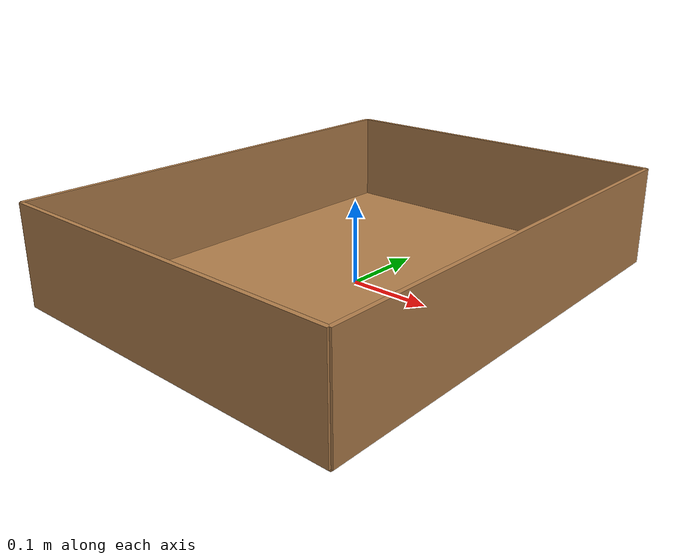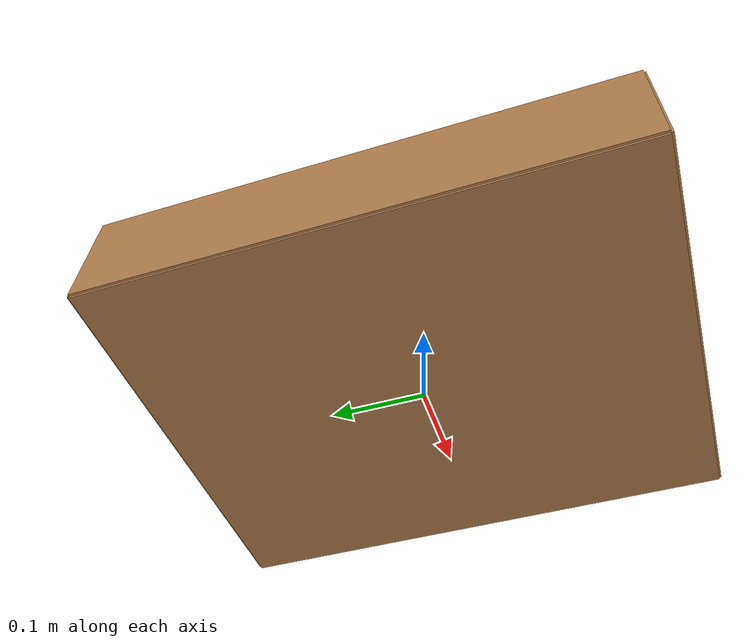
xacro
<?xml version="1.0"?>
<robot name="basket" xmlns:xacro="http://www.ros.org/wiki/xacro">

  <xacro:include filename="$(find world_model_data)/data/models/xacro/common.xacro"/>

  <xacro:macro name="basket" params="name length width depth
                                     color *origin">

    <link name="${name}-base">
      <!--link name="${name}-bottom"-->
      <visual>
        <origin rpy="0 0 0" xyz="0 0 0"/>
        <geometry>
          <box size="${length} ${width} 0.005"/>
        </geometry>
        <material name="basket_color"/>
      </visual>
      <collision>
        <origin rpy="0 0 0" xyz="0 0 0"/>
        <geometry>
          <box size="${length} ${width} 0.005"/>
        </geometry>
      </collision>
      <inertial>
        <origin rpy="0 0 0" xyz="0.000000 0.000000 0.000000"/>
        <mass value="1.0"/>
        <inertia ixx="1.0" ixy="0.01" ixz="0.01" iyy="1.0" iyz="0.01" izz="1.0"/>
      </inertial>

      <!--link name="${name}-left"-->
      <visual>
        <origin xyz="0 -${width/2.} ${depth/2.}" rpy="1.57 0 0"/>
        <geometry>
          <box size="${length} ${depth} 0.005"/>
        </geometry>
        <material name="basket_color"/>
      </visual>
      <collision>
        <origin xyz="0 -${width/2.} ${depth/2.}" rpy="1.57 0 0"/>
        <geometry>
          <box size="${length} ${depth} 0.005"/>
        </geometry>
      </collision>
      <inertial>
        <origin xyz="0 -${width/2.} ${depth/2.}" rpy="1.57 0 0"/>
        <mass value="0.1"/>
        <inertia ixx="1.0" ixy="0.01" ixz="0.01" iyy="1.0" iyz="0.01" izz="1.0"/>
      </inertial>

      <!--link name="${name}-right"-->
      <visual>
        <origin xyz="0 ${width/2.} ${depth/2.}" rpy="1.57 0 0"/>
        <geometry>
          <box size="${length} ${depth} 0.005"/>
        </geometry>
        <material name="basket_color"/>
      </visual>
      <collision>
        <origin xyz="0 ${width/2.} ${depth/2.}" rpy="1.57 0 0"/>
        <geometry>
          <box size="${length} ${depth} 0.005"/>
        </geometry>
      </collision>
      <inertial>
        <origin xyz="0 ${width/2.} ${depth/2.}" rpy="1.57 0 0"/>
        <mass value="0.1"/>
        <inertia ixx="1.0" ixy="0.01" ixz="0.01" iyy="1.0" iyz="0.01" izz="1.0"/>
      </inertial>

      <!--link name="${name}-up"-->
      <visual>
        <origin xyz="${length/2.} 0 ${depth/2.}" rpy="0 1.57 0"/>
        <geometry>
          <box size="${depth} ${width} 0.005"/>
        </geometry>
        <material name="basket_color"/>
      </visual>
      <collision>
        <origin xyz="${length/2.} 0 ${depth/2.}" rpy="0 1.57 0"/>
        <geometry>
          <box size="${depth} ${width} 0.005"/>
        </geometry>
      </collision>
      <inertial>
        <origin xyz="${length/2.} 0 ${depth/2.}" rpy="0 1.57 0"/>
        <mass value="0.1"/>
        <inertia ixx="1.0" ixy="0.01" ixz="0.01" iyy="1.0" iyz="0.01" izz="1.0"/>
      </inertial>

      <!--link name="${name}-down"-->
      <visual>
        <origin xyz="-${length/2.} 0 ${depth/2.}" rpy="0 1.57 0"/>
        <geometry>
          <box size="${depth} ${width} 0.005"/>
        </geometry>
        <material name="basket_color"/>
      </visual>
      <collision>
        <origin xyz="-${length/2.} 0 ${depth/2.}" rpy="0 1.57 0"/>
        <geometry>
          <box size="${depth} ${width} 0.005"/>
        </geometry>
      </collision>
      <inertial>
        <origin xyz="-${length/2.} 0 ${depth/2.}" rpy="0 1.57 0"/>
        <mass value="0.1"/>
        <inertia ixx="1.0" ixy="0.01" ixz="0.01" iyy="1.0" iyz="0.01" izz="1.0"/>
      </inertial>
    </link>

    <gazebo reference="${name}-base">
      <material>Gazebo/${color}</material>
      <kp>1000000.0</kp>
      <kd>1.0</kd>
      <mu1>1.0</mu1>
      <mu2>1.0</mu2>
      <minDepth>0.001</minDepth>
    </gazebo>

  </xacro:macro>

  <xacro:arg name="name" default="place-tray"/>
  <xacro:arg name="length" default="0.44"/>
  <xacro:arg name="width" default="0.56"/>
  <xacro:arg name="depth" default="0.12"/>
  <xacro:arg name="color" default="WoodPallet"/>
  <xacro:arg name="xyz" default="0 0 0"/>
  <xacro:arg name="rpy" default="0 0 0"/>

  <xacro:basket name="$(arg name)"
              length="$(arg length)" width="$(arg width)"
              depth="$(arg depth)" color="$(arg color)">
      <origin xyz="$(arg xyz)" rpy="$(arg rpy)" />
  </xacro:basket>

</robot>
